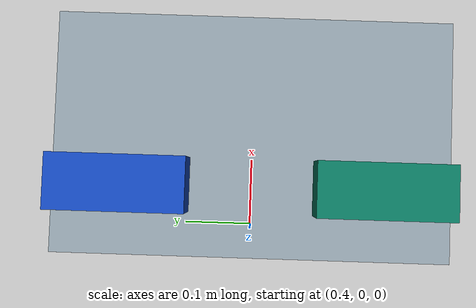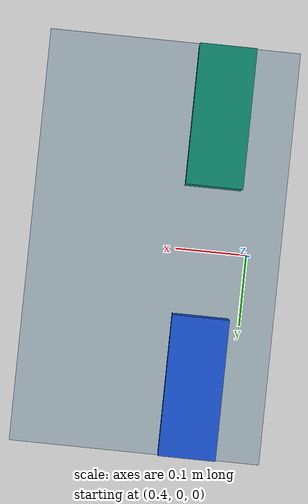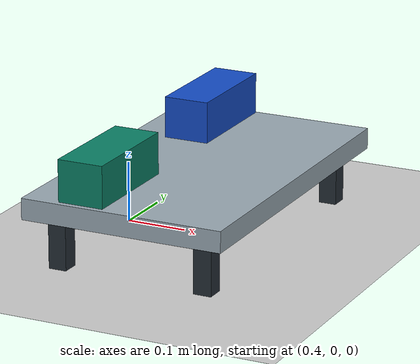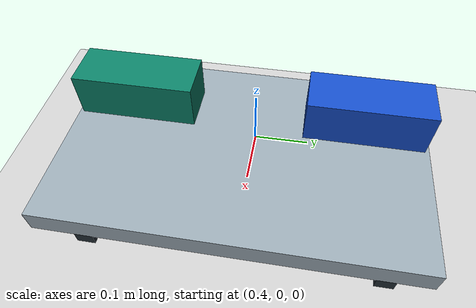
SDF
<?xml version='1.0' encoding='UTF-8'?>
<sdf version="1.6">
  <world name="handarm_front_stacking">
    <gravity>0 0 -9.81</gravity>
    <physics name="ode" type="ode">
      <max_step_size>0.001</max_step_size>
      <real_time_update_rate>1000</real_time_update_rate>
      <ode>
        <solver>
          <type>quick</type>
          <iters>100</iters>
          <sor>1.3</sor>
        </solver>
        <constraints>
          <cfm>0.0</cfm>
          <erp>0.2</erp>
          <contact_max_correcting_vel>0.1</contact_max_correcting_vel>
          <contact_surface_layer>0.001</contact_surface_layer>
        </constraints>
      </ode>
    </physics>
    <include>
      <uri>model://ground_plane</uri>
      <pose>0 0 0 0 0 0</pose>
    </include>
    <include>
      <uri>model://sun</uri>
    </include>
    <scene>
      <ambient>0.5 0.5 0.5 1</ambient>
      <background>0.7 0.7 0.7 1</background>
    </scene>
    <gui fullscreen="0">
      <camera name="user_camera">
        <pose>1.6 -1.05 1.45 0 0.615737453 2.480549485</pose>
        <view_controller>orbit</view_controller>
        <projection_type>perspective</projection_type>
      </camera>
      <plugin name="handarm_gui_render_rate_limiter" filename="libhandarm_gui_render_rate_limiter_plugin.so">
        <renderRateHz>15.0</renderRateHz>
      </plugin>
    </gui>
    <model name="work_table">
      <static>true</static>
      <pose>0.53 0 0.1025 0 0 0</pose>
      <link name="table_link">
        <collision name="collision_0">
          <pose>0 0 0 0 0 0</pose>
          <geometry>
            <box>
              <size>0.34 0.56 0.035</size>
            </box>
          </geometry>
          <surface>
            <friction>
              <ode>
                <mu>1.0</mu>
                <mu2>1.0</mu2>
              </ode>
            </friction>
          </surface>
        </collision>
        <visual name="surface_0">
          <pose>0 0 0 0 0 0</pose>
          <geometry>
            <box>
              <size>0.34 0.56 0.035</size>
            </box>
          </geometry>
          <material>
            <ambient>0.60 0.66 0.70 1</ambient>
            <diffuse>0.60 0.66 0.70 1</diffuse>
          </material>
        </visual>
        <collision name="collision_1">
          <pose>-0.125 -0.235 -0.06 0 0 0</pose>
          <geometry>
            <box>
              <size>0.03 0.03 0.085</size>
            </box>
          </geometry>
          <surface>
            <friction>
              <ode>
                <mu>1.0</mu>
                <mu2>1.0</mu2>
              </ode>
            </friction>
          </surface>
        </collision>
        <visual name="surface_1">
          <pose>-0.125 -0.235 -0.06 0 0 0</pose>
          <geometry>
            <box>
              <size>0.03 0.03 0.085</size>
            </box>
          </geometry>
          <material>
            <ambient>0.14 0.18 0.21 1</ambient>
            <diffuse>0.14 0.18 0.21 1</diffuse>
          </material>
        </visual>
        <collision name="collision_2">
          <pose>-0.125 0.235 -0.06 0 0 0</pose>
          <geometry>
            <box>
              <size>0.03 0.03 0.085</size>
            </box>
          </geometry>
          <surface>
            <friction>
              <ode>
                <mu>1.0</mu>
                <mu2>1.0</mu2>
              </ode>
            </friction>
          </surface>
        </collision>
        <visual name="surface_2">
          <pose>-0.125 0.235 -0.06 0 0 0</pose>
          <geometry>
            <box>
              <size>0.03 0.03 0.085</size>
            </box>
          </geometry>
          <material>
            <ambient>0.14 0.18 0.21 1</ambient>
            <diffuse>0.14 0.18 0.21 1</diffuse>
          </material>
        </visual>
        <collision name="collision_3">
          <pose>0.125 -0.235 -0.06 0 0 0</pose>
          <geometry>
            <box>
              <size>0.03 0.03 0.085</size>
            </box>
          </geometry>
          <surface>
            <friction>
              <ode>
                <mu>1.0</mu>
                <mu2>1.0</mu2>
              </ode>
            </friction>
          </surface>
        </collision>
        <visual name="surface_3">
          <pose>0.125 -0.235 -0.06 0 0 0</pose>
          <geometry>
            <box>
              <size>0.03 0.03 0.085</size>
            </box>
          </geometry>
          <material>
            <ambient>0.14 0.18 0.21 1</ambient>
            <diffuse>0.14 0.18 0.21 1</diffuse>
          </material>
        </visual>
        <collision name="collision_4">
          <pose>0.125 0.235 -0.06 0 0 0</pose>
          <geometry>
            <box>
              <size>0.03 0.03 0.085</size>
            </box>
          </geometry>
          <surface>
            <friction>
              <ode>
                <mu>1.0</mu>
                <mu2>1.0</mu2>
              </ode>
            </friction>
          </surface>
        </collision>
        <visual name="surface_4">
          <pose>0.125 0.235 -0.06 0 0 0</pose>
          <geometry>
            <box>
              <size>0.03 0.03 0.085</size>
            </box>
          </geometry>
          <material>
            <ambient>0.14 0.18 0.21 1</ambient>
            <diffuse>0.14 0.18 0.21 1</diffuse>
          </material>
        </visual>
      </link>
    </model>
    <!--Doubled block length: 18.667 x 7.6 x 6.9 cm, lying flat. Centers remain 36 cm apart.-->
    <model name="target_object">
      <static>false</static>
      <pose>0.46 -0.18 0.1555 0 0 0</pose>
      <link name="object_link">
        <inertial>
          <mass>0.1028</mass>
          <inertia>
            <ixx>0.00033928664074074085</ixx>
            <iyy>9.0266966666666682e-05</iyy>
            <izz>0.00034798180740740745</izz>
          </inertia>
        </inertial>
        <collision name="collision">
          <pose>0 0 0 0 0 0</pose>
          <geometry>
            <box>
              <size>0.076 0.18666666666666668 0.069</size>
            </box>
          </geometry>
          <surface>
            <friction>
              <ode>
                <mu>1.2</mu>
                <mu2>1.2</mu2>
              </ode>
            </friction>
            <!--Reuse the cylinder contact compliance; default rigid box contact lost support in Gazebo.-->
            <contact>
              <ode>
                <kp>1000000</kp>
                <kd>10</kd>
                <max_vel>0.1</max_vel>
                <min_depth>0.001</min_depth>
              </ode>
            </contact>
          </surface>
        </collision>
        <visual name="block">
          <pose>0 0 0.0 0 0 0</pose>
          <geometry>
            <box>
              <size>0.076 0.18666666666666668 0.069</size>
            </box>
          </geometry>
          <material>
            <ambient>0.04 0.50 0.40 1</ambient>
            <diffuse>0.04 0.50 0.40 1</diffuse>
            <specular>0.25 0.25 0.25 1</specular>
          </material>
        </visual>
        <sensor name="target_contact_sensor" type="contact">
          <always_on>true</always_on>
          <update_rate>100.0</update_rate>
          <contact>
            <collision>collision</collision>
          </contact>
          <plugin name="target_contact_reporter" filename="libgazebo_ros_bumper.so">
            <alwaysOn>true</alwaysOn>
            <updateRate>100.0</updateRate>
            <frameName>world</frameName>
            <bumperTopicName>/handarm_sim_demo/target_contacts</bumperTopicName>
          </plugin>
        </sensor>
      </link>
    </model>
    <model name="ground_object_left">
      <static>false</static>
      <pose>0.46 0.18 0.1555 0 0 0</pose>
      <link name="object_link">
        <inertial>
          <mass>0.1028</mass>
          <inertia>
            <ixx>0.00033928664074074085</ixx>
            <iyy>9.0266966666666682e-05</iyy>
            <izz>0.00034798180740740745</izz>
          </inertia>
        </inertial>
        <collision name="collision">
          <pose>0 0 0 0 0 0</pose>
          <geometry>
            <box>
              <size>0.076 0.18666666666666668 0.069</size>
            </box>
          </geometry>
          <surface>
            <friction>
              <ode>
                <mu>1.2</mu>
                <mu2>1.2</mu2>
              </ode>
            </friction>
            <!--Reuse the cylinder contact compliance; default rigid box contact lost support in Gazebo.-->
            <contact>
              <ode>
                <kp>1000000</kp>
                <kd>10</kd>
                <max_vel>0.1</max_vel>
                <min_depth>0.001</min_depth>
              </ode>
            </contact>
          </surface>
        </collision>
        <visual name="block">
          <pose>0 0 0.0 0 0 0</pose>
          <geometry>
            <box>
              <size>0.076 0.18666666666666668 0.069</size>
            </box>
          </geometry>
          <material>
            <ambient>0.08 0.30 0.78 1</ambient>
            <diffuse>0.08 0.30 0.78 1</diffuse>
            <specular>0.25 0.25 0.25 1</specular>
          </material>
        </visual>
      </link>
    </model>
  </world>
</sdf>
